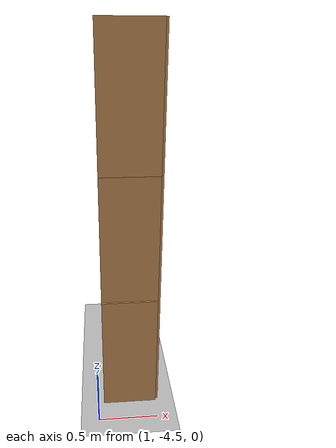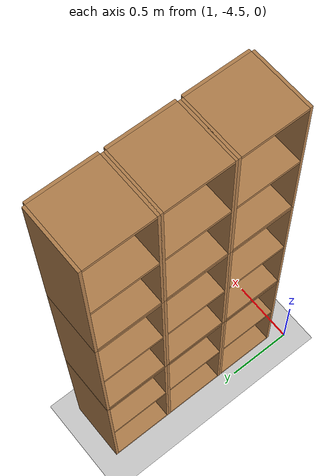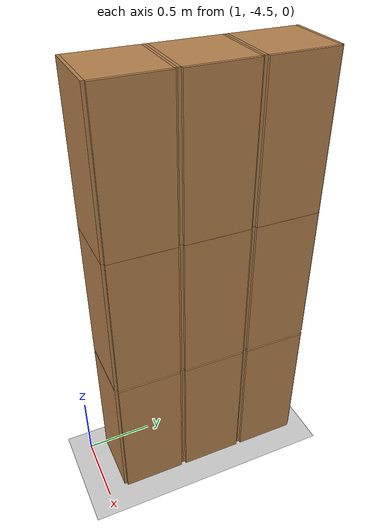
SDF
<sdf version="1.6">
 <world name="default">
  <model name="ground_plane">
   <static>1</static>
   <link name="link">
    <collision name="collision">
     <geometry><plane><normal>0 0 1</normal><size>100 100</size></plane></geometry>
     <surface>
      <contact><collide_bitmask>65535</collide_bitmask></contact>
      <friction><ode><mu>100</mu><mu2>50</mu2></ode></friction>
     </surface>
    </collision>
    <visual name="visual">
     <cast_shadows>0</cast_shadows>
     <geometry><plane><normal>0 0 1</normal><size>100 100</size></plane></geometry>
     <material>
      <script><uri>file://media/materials/scripts/gazebo.material</uri><name>Gazebo/Grey</name></script>
     </material>
    </visual>
   </link>
  </model>
  <model name="Locker18_clone_3_clone_clone">
   <model name="Locker18">
    <model name="Locker3">
     <model name="cabinet">
      <static>1</static>
      <link name="cabinet_bottom_plate">
       <inertial>
        <pose>0 0 -1 0 -0 0</pose>
        <inertia><ixx>2.05</ixx><ixy>0</ixy><ixz>0</ixz><iyy>2.05</iyy><iyz>0</iyz><izz>2.05</izz></inertia>
        <mass>25</mass>
       </inertial>
       <collision name="cabinet_bottom_plate_geom">
        <pose>0 0 0.01 0 -0 0</pose>
        <geometry><box><size>0.45 0.45 0.02</size></box></geometry>
       </collision>
       <visual name="cabinet_bottom_plate_geom_visual">
        <pose>0 0 0.01 0 -0 0</pose>
        <geometry><box><size>0.45 0.45 0.02</size></box></geometry>
        <material>
         <script><uri>file://media/materials/scripts/gazebo.material</uri><name>Gazebo/Wood</name></script>
        </material>
       </visual>
       <collision name="cabinet_bottom_plate_geom_cabinet_back_plate">
        <pose>0.235 0 0.51 0 -0 0</pose>
        <geometry><box><size>0.02 0.45 1.02</size></box></geometry>
       </collision>
       <visual name="cabinet_bottom_plate_geom_cabinet_back_plate_visual">
        <pose>0.235 0 0.51 0 -0 0</pose>
        <geometry><box><size>0.02 0.45 1.02</size></box></geometry>
        <material>
         <script><uri>file://media/materials/scripts/gazebo.material</uri><name>Gazebo/Wood</name></script>
        </material>
       </visual>
       <collision name="cabinet_bottom_plate_geom_cabinet_left_plate">
        <pose>0 0.235 0.51 0 -0 0</pose>
        <geometry><box><size>0.45 0.02 1.02</size></box></geometry>
       </collision>
       <visual name="cabinet_bottom_plate_geom_cabinet_left_plate_visual">
        <pose>0 0.235 0.51 0 -0 0</pose>
        <geometry><box><size>0.45 0.02 1.02</size></box></geometry>
        <material>
         <script><uri>file://media/materials/scripts/gazebo.material</uri><name>Gazebo/Wood</name></script>
        </material>
       </visual>
       <collision name="cabinet_bottom_plate_geom_cabinet_middle_plate">
        <pose>0 0 0.51 0 -0 0</pose>
        <geometry><box><size>0.45 0.45 0.02</size></box></geometry>
       </collision>
       <visual name="cabinet_bottom_plate_geom_cabinet_middle_plate_visual">
        <pose>0 0 0.51 0 -0 0</pose>
        <geometry><box><size>0.45 0.45 0.02</size></box></geometry>
        <material>
         <script><uri>file://media/materials/scripts/gazebo.material</uri><name>Gazebo/Wood</name></script>
        </material>
       </visual>
       <collision name="cabinet_bottom_plate_geom_cabinet_right_plate">
        <pose>0 -0.235 0.51 0 -0 0</pose>
        <geometry><box><size>0.45 0.02 1.02</size></box></geometry>
       </collision>
       <visual name="cabinet_bottom_plate_geom_cabinet_right_plate_visual">
        <pose>0 -0.235 0.51 0 -0 0</pose>
        <geometry><box><size>0.45 0.02 1.02</size></box></geometry>
        <material>
         <script><uri>file://media/materials/scripts/gazebo.material</uri><name>Gazebo/Wood</name></script>
        </material>
       </visual>
       <collision name="cabinet_bottom_plate_geom_cabinet_top_plate">
        <pose>0 0 1.01 0 -0 0</pose>
        <geometry><box><size>0.45 0.45 0.02</size></box></geometry>
       </collision>
       <visual name="cabinet_bottom_plate_geom_cabinet_top_plate_visual">
        <pose>0 0 1.01 0 -0 0</pose>
        <geometry><box><size>0.45 0.45 0.02</size></box></geometry>
        <material>
         <script><uri>file://media/materials/scripts/gazebo.material</uri><name>Gazebo/Wood</name></script>
        </material>
       </visual>
      </link>
      <pose>-0.676968 1.45758 0 0 -0 0</pose>
     </model>
     <model name="cabinet_clone">
      <static>1</static>
      <link name="cabinet_bottom_plate">
       <inertial>
        <pose>0 0 -1 0 -0 0</pose>
        <inertia><ixx>2.05</ixx><ixy>0</ixy><ixz>0</ixz><iyy>2.05</iyy><iyz>0</iyz><izz>2.05</izz></inertia>
        <mass>25</mass>
       </inertial>
       <collision name="cabinet_bottom_plate_geom">
        <pose>0 0 0.01 0 -0 0</pose>
        <geometry><box><size>0.45 0.45 0.02</size></box></geometry>
       </collision>
       <visual name="cabinet_bottom_plate_geom_visual">
        <pose>0 0 0.01 0 -0 0</pose>
        <geometry><box><size>0.45 0.45 0.02</size></box></geometry>
        <material>
         <script><uri>file://media/materials/scripts/gazebo.material</uri><name>Gazebo/Wood</name></script>
        </material>
       </visual>
       <collision name="cabinet_bottom_plate_geom_cabinet_back_plate">
        <pose>0.235 0 0.51 0 -0 0</pose>
        <geometry><box><size>0.02 0.45 1.02</size></box></geometry>
       </collision>
       <visual name="cabinet_bottom_plate_geom_cabinet_back_plate_visual">
        <pose>0.235 0 0.51 0 -0 0</pose>
        <geometry><box><size>0.02 0.45 1.02</size></box></geometry>
        <material>
         <script><uri>file://media/materials/scripts/gazebo.material</uri><name>Gazebo/Wood</name></script>
        </material>
       </visual>
       <collision name="cabinet_bottom_plate_geom_cabinet_left_plate">
        <pose>0 0.235 0.51 0 -0 0</pose>
        <geometry><box><size>0.45 0.02 1.02</size></box></geometry>
       </collision>
       <visual name="cabinet_bottom_plate_geom_cabinet_left_plate_visual">
        <pose>0 0.235 0.51 0 -0 0</pose>
        <geometry><box><size>0.45 0.02 1.02</size></box></geometry>
        <material>
         <script><uri>file://media/materials/scripts/gazebo.material</uri><name>Gazebo/Wood</name></script>
        </material>
       </visual>
       <collision name="cabinet_bottom_plate_geom_cabinet_middle_plate">
        <pose>0 0 0.51 0 -0 0</pose>
        <geometry><box><size>0.45 0.45 0.02</size></box></geometry>
       </collision>
       <visual name="cabinet_bottom_plate_geom_cabinet_middle_plate_visual">
        <pose>0 0 0.51 0 -0 0</pose>
        <geometry><box><size>0.45 0.45 0.02</size></box></geometry>
        <material>
         <script><uri>file://media/materials/scripts/gazebo.material</uri><name>Gazebo/Wood</name></script>
        </material>
       </visual>
       <collision name="cabinet_bottom_plate_geom_cabinet_right_plate">
        <pose>0 -0.235 0.51 0 -0 0</pose>
        <geometry><box><size>0.45 0.02 1.02</size></box></geometry>
       </collision>
       <visual name="cabinet_bottom_plate_geom_cabinet_right_plate_visual">
        <pose>0 -0.235 0.51 0 -0 0</pose>
        <geometry><box><size>0.45 0.02 1.02</size></box></geometry>
        <material>
         <script><uri>file://media/materials/scripts/gazebo.material</uri><name>Gazebo/Wood</name></script>
        </material>
       </visual>
       <collision name="cabinet_bottom_plate_geom_cabinet_top_plate">
        <pose>0 0 1.01 0 -0 0</pose>
        <geometry><box><size>0.45 0.45 0.02</size></box></geometry>
       </collision>
       <visual name="cabinet_bottom_plate_geom_cabinet_top_plate_visual">
        <pose>0 0 1.01 0 -0 0</pose>
        <geometry><box><size>0.45 0.45 0.02</size></box></geometry>
        <material>
         <script><uri>file://media/materials/scripts/gazebo.material</uri><name>Gazebo/Wood</name></script>
        </material>
       </visual>
      </link>
      <pose>-0.676968 0.970971 0 0 -0 0</pose>
     </model>
     <model name="cabinet_clone_0">
      <static>1</static>
      <link name="cabinet_bottom_plate">
       <inertial>
        <pose>0 0 -1 0 -0 0</pose>
        <inertia><ixx>2.05</ixx><ixy>0</ixy><ixz>0</ixz><iyy>2.05</iyy><iyz>0</iyz><izz>2.05</izz></inertia>
        <mass>25</mass>
       </inertial>
       <collision name="cabinet_bottom_plate_geom">
        <pose>0 0 0.01 0 -0 0</pose>
        <geometry><box><size>0.45 0.45 0.02</size></box></geometry>
       </collision>
       <visual name="cabinet_bottom_plate_geom_visual">
        <pose>0 0 0.01 0 -0 0</pose>
        <geometry><box><size>0.45 0.45 0.02</size></box></geometry>
        <material>
         <script><uri>file://media/materials/scripts/gazebo.material</uri><name>Gazebo/Wood</name></script>
        </material>
       </visual>
       <collision name="cabinet_bottom_plate_geom_cabinet_back_plate">
        <pose>0.235 0 0.51 0 -0 0</pose>
        <geometry><box><size>0.02 0.45 1.02</size></box></geometry>
       </collision>
       <visual name="cabinet_bottom_plate_geom_cabinet_back_plate_visual">
        <pose>0.235 0 0.51 0 -0 0</pose>
        <geometry><box><size>0.02 0.45 1.02</size></box></geometry>
        <material>
         <script><uri>file://media/materials/scripts/gazebo.material</uri><name>Gazebo/Wood</name></script>
        </material>
       </visual>
       <collision name="cabinet_bottom_plate_geom_cabinet_left_plate">
        <pose>0 0.235 0.51 0 -0 0</pose>
        <geometry><box><size>0.45 0.02 1.02</size></box></geometry>
       </collision>
       <visual name="cabinet_bottom_plate_geom_cabinet_left_plate_visual">
        <pose>0 0.235 0.51 0 -0 0</pose>
        <geometry><box><size>0.45 0.02 1.02</size></box></geometry>
        <material>
         <script><uri>file://media/materials/scripts/gazebo.material</uri><name>Gazebo/Wood</name></script>
        </material>
       </visual>
       <collision name="cabinet_bottom_plate_geom_cabinet_middle_plate">
        <pose>0 0 0.51 0 -0 0</pose>
        <geometry><box><size>0.45 0.45 0.02</size></box></geometry>
       </collision>
       <visual name="cabinet_bottom_plate_geom_cabinet_middle_plate_visual">
        <pose>0 0 0.51 0 -0 0</pose>
        <geometry><box><size>0.45 0.45 0.02</size></box></geometry>
        <material>
         <script><uri>file://media/materials/scripts/gazebo.material</uri><name>Gazebo/Wood</name></script>
        </material>
       </visual>
       <collision name="cabinet_bottom_plate_geom_cabinet_right_plate">
        <pose>0 -0.235 0.51 0 -0 0</pose>
        <geometry><box><size>0.45 0.02 1.02</size></box></geometry>
       </collision>
       <visual name="cabinet_bottom_plate_geom_cabinet_right_plate_visual">
        <pose>0 -0.235 0.51 0 -0 0</pose>
        <geometry><box><size>0.45 0.02 1.02</size></box></geometry>
        <material>
         <script><uri>file://media/materials/scripts/gazebo.material</uri><name>Gazebo/Wood</name></script>
        </material>
       </visual>
       <collision name="cabinet_bottom_plate_geom_cabinet_top_plate">
        <pose>0 0 1.01 0 -0 0</pose>
        <geometry><box><size>0.45 0.45 0.02</size></box></geometry>
       </collision>
       <visual name="cabinet_bottom_plate_geom_cabinet_top_plate_visual">
        <pose>0 0 1.01 0 -0 0</pose>
        <geometry><box><size>0.45 0.45 0.02</size></box></geometry>
        <material>
         <script><uri>file://media/materials/scripts/gazebo.material</uri><name>Gazebo/Wood</name></script>
        </material>
       </visual>
      </link>
      <pose>-0.676968 0.48391 0 0 -0 0</pose>
     </model>
     <static>0</static>
     <pose>0 3e-06 -1.02763 0 -0 0</pose>
    </model>
    <model name="Locker3_clone">
     <model name="cabinet">
      <static>1</static>
      <link name="cabinet_bottom_plate">
       <inertial>
        <pose>0 0 -1 0 -0 0</pose>
        <inertia><ixx>2.05</ixx><ixy>0</ixy><ixz>0</ixz><iyy>2.05</iyy><iyz>0</iyz><izz>2.05</izz></inertia>
        <mass>25</mass>
       </inertial>
       <collision name="cabinet_bottom_plate_geom">
        <pose>0 0 0.01 0 -0 0</pose>
        <geometry><box><size>0.45 0.45 0.02</size></box></geometry>
       </collision>
       <visual name="cabinet_bottom_plate_geom_visual">
        <pose>0 0 0.01 0 -0 0</pose>
        <geometry><box><size>0.45 0.45 0.02</size></box></geometry>
        <material>
         <script><uri>file://media/materials/scripts/gazebo.material</uri><name>Gazebo/Wood</name></script>
        </material>
       </visual>
       <collision name="cabinet_bottom_plate_geom_cabinet_back_plate">
        <pose>0.235 0 0.51 0 -0 0</pose>
        <geometry><box><size>0.02 0.45 1.02</size></box></geometry>
       </collision>
       <visual name="cabinet_bottom_plate_geom_cabinet_back_plate_visual">
        <pose>0.235 0 0.51 0 -0 0</pose>
        <geometry><box><size>0.02 0.45 1.02</size></box></geometry>
        <material>
         <script><uri>file://media/materials/scripts/gazebo.material</uri><name>Gazebo/Wood</name></script>
        </material>
       </visual>
       <collision name="cabinet_bottom_plate_geom_cabinet_left_plate">
        <pose>0 0.235 0.51 0 -0 0</pose>
        <geometry><box><size>0.45 0.02 1.02</size></box></geometry>
       </collision>
       <visual name="cabinet_bottom_plate_geom_cabinet_left_plate_visual">
        <pose>0 0.235 0.51 0 -0 0</pose>
        <geometry><box><size>0.45 0.02 1.02</size></box></geometry>
        <material>
         <script><uri>file://media/materials/scripts/gazebo.material</uri><name>Gazebo/Wood</name></script>
        </material>
       </visual>
       <collision name="cabinet_bottom_plate_geom_cabinet_middle_plate">
        <pose>0 0 0.51 0 -0 0</pose>
        <geometry><box><size>0.45 0.45 0.02</size></box></geometry>
       </collision>
       <visual name="cabinet_bottom_plate_geom_cabinet_middle_plate_visual">
        <pose>0 0 0.51 0 -0 0</pose>
        <geometry><box><size>0.45 0.45 0.02</size></box></geometry>
        <material>
         <script><uri>file://media/materials/scripts/gazebo.material</uri><name>Gazebo/Wood</name></script>
        </material>
       </visual>
       <collision name="cabinet_bottom_plate_geom_cabinet_right_plate">
        <pose>0 -0.235 0.51 0 -0 0</pose>
        <geometry><box><size>0.45 0.02 1.02</size></box></geometry>
       </collision>
       <visual name="cabinet_bottom_plate_geom_cabinet_right_plate_visual">
        <pose>0 -0.235 0.51 0 -0 0</pose>
        <geometry><box><size>0.45 0.02 1.02</size></box></geometry>
        <material>
         <script><uri>file://media/materials/scripts/gazebo.material</uri><name>Gazebo/Wood</name></script>
        </material>
       </visual>
       <collision name="cabinet_bottom_plate_geom_cabinet_top_plate">
        <pose>0 0 1.01 0 -0 0</pose>
        <geometry><box><size>0.45 0.45 0.02</size></box></geometry>
       </collision>
       <visual name="cabinet_bottom_plate_geom_cabinet_top_plate_visual">
        <pose>0 0 1.01 0 -0 0</pose>
        <geometry><box><size>0.45 0.45 0.02</size></box></geometry>
        <material>
         <script><uri>file://media/materials/scripts/gazebo.material</uri><name>Gazebo/Wood</name></script>
        </material>
       </visual>
      </link>
      <pose>-0.676968 1.45758 0 0 -0 0</pose>
     </model>
     <model name="cabinet_clone">
      <static>1</static>
      <link name="cabinet_bottom_plate">
       <inertial>
        <pose>0 0 -1 0 -0 0</pose>
        <inertia><ixx>2.05</ixx><ixy>0</ixy><ixz>0</ixz><iyy>2.05</iyy><iyz>0</iyz><izz>2.05</izz></inertia>
        <mass>25</mass>
       </inertial>
       <collision name="cabinet_bottom_plate_geom">
        <pose>0 0 0.01 0 -0 0</pose>
        <geometry><box><size>0.45 0.45 0.02</size></box></geometry>
       </collision>
       <visual name="cabinet_bottom_plate_geom_visual">
        <pose>0 0 0.01 0 -0 0</pose>
        <geometry><box><size>0.45 0.45 0.02</size></box></geometry>
        <material>
         <script><uri>file://media/materials/scripts/gazebo.material</uri><name>Gazebo/Wood</name></script>
        </material>
       </visual>
       <collision name="cabinet_bottom_plate_geom_cabinet_back_plate">
        <pose>0.235 0 0.51 0 -0 0</pose>
        <geometry><box><size>0.02 0.45 1.02</size></box></geometry>
       </collision>
       <visual name="cabinet_bottom_plate_geom_cabinet_back_plate_visual">
        <pose>0.235 0 0.51 0 -0 0</pose>
        <geometry><box><size>0.02 0.45 1.02</size></box></geometry>
        <material>
         <script><uri>file://media/materials/scripts/gazebo.material</uri><name>Gazebo/Wood</name></script>
        </material>
       </visual>
       <collision name="cabinet_bottom_plate_geom_cabinet_left_plate">
        <pose>0 0.235 0.51 0 -0 0</pose>
        <geometry><box><size>0.45 0.02 1.02</size></box></geometry>
       </collision>
       <visual name="cabinet_bottom_plate_geom_cabinet_left_plate_visual">
        <pose>0 0.235 0.51 0 -0 0</pose>
        <geometry><box><size>0.45 0.02 1.02</size></box></geometry>
        <material>
         <script><uri>file://media/materials/scripts/gazebo.material</uri><name>Gazebo/Wood</name></script>
        </material>
       </visual>
       <collision name="cabinet_bottom_plate_geom_cabinet_middle_plate">
        <pose>0 0 0.51 0 -0 0</pose>
        <geometry><box><size>0.45 0.45 0.02</size></box></geometry>
       </collision>
       <visual name="cabinet_bottom_plate_geom_cabinet_middle_plate_visual">
        <pose>0 0 0.51 0 -0 0</pose>
        <geometry><box><size>0.45 0.45 0.02</size></box></geometry>
        <material>
         <script><uri>file://media/materials/scripts/gazebo.material</uri><name>Gazebo/Wood</name></script>
        </material>
       </visual>
       <collision name="cabinet_bottom_plate_geom_cabinet_right_plate">
        <pose>0 -0.235 0.51 0 -0 0</pose>
        <geometry><box><size>0.45 0.02 1.02</size></box></geometry>
       </collision>
       <visual name="cabinet_bottom_plate_geom_cabinet_right_plate_visual">
        <pose>0 -0.235 0.51 0 -0 0</pose>
        <geometry><box><size>0.45 0.02 1.02</size></box></geometry>
        <material>
         <script><uri>file://media/materials/scripts/gazebo.material</uri><name>Gazebo/Wood</name></script>
        </material>
       </visual>
       <collision name="cabinet_bottom_plate_geom_cabinet_top_plate">
        <pose>0 0 1.01 0 -0 0</pose>
        <geometry><box><size>0.45 0.45 0.02</size></box></geometry>
       </collision>
       <visual name="cabinet_bottom_plate_geom_cabinet_top_plate_visual">
        <pose>0 0 1.01 0 -0 0</pose>
        <geometry><box><size>0.45 0.45 0.02</size></box></geometry>
        <material>
         <script><uri>file://media/materials/scripts/gazebo.material</uri><name>Gazebo/Wood</name></script>
        </material>
       </visual>
      </link>
      <pose>-0.676968 0.970971 0 0 -0 0</pose>
     </model>
     <model name="cabinet_clone_0">
      <static>1</static>
      <link name="cabinet_bottom_plate">
       <inertial>
        <pose>0 0 -1 0 -0 0</pose>
        <inertia><ixx>2.05</ixx><ixy>0</ixy><ixz>0</ixz><iyy>2.05</iyy><iyz>0</iyz><izz>2.05</izz></inertia>
        <mass>25</mass>
       </inertial>
       <collision name="cabinet_bottom_plate_geom">
        <pose>0 0 0.01 0 -0 0</pose>
        <geometry><box><size>0.45 0.45 0.02</size></box></geometry>
       </collision>
       <visual name="cabinet_bottom_plate_geom_visual">
        <pose>0 0 0.01 0 -0 0</pose>
        <geometry><box><size>0.45 0.45 0.02</size></box></geometry>
        <material>
         <script><uri>file://media/materials/scripts/gazebo.material</uri><name>Gazebo/Wood</name></script>
        </material>
       </visual>
       <collision name="cabinet_bottom_plate_geom_cabinet_back_plate">
        <pose>0.235 0 0.51 0 -0 0</pose>
        <geometry><box><size>0.02 0.45 1.02</size></box></geometry>
       </collision>
       <visual name="cabinet_bottom_plate_geom_cabinet_back_plate_visual">
        <pose>0.235 0 0.51 0 -0 0</pose>
        <geometry><box><size>0.02 0.45 1.02</size></box></geometry>
        <material>
         <script><uri>file://media/materials/scripts/gazebo.material</uri><name>Gazebo/Wood</name></script>
        </material>
       </visual>
       <collision name="cabinet_bottom_plate_geom_cabinet_left_plate">
        <pose>0 0.235 0.51 0 -0 0</pose>
        <geometry><box><size>0.45 0.02 1.02</size></box></geometry>
       </collision>
       <visual name="cabinet_bottom_plate_geom_cabinet_left_plate_visual">
        <pose>0 0.235 0.51 0 -0 0</pose>
        <geometry><box><size>0.45 0.02 1.02</size></box></geometry>
        <material>
         <script><uri>file://media/materials/scripts/gazebo.material</uri><name>Gazebo/Wood</name></script>
        </material>
       </visual>
       <collision name="cabinet_bottom_plate_geom_cabinet_middle_plate">
        <pose>0 0 0.51 0 -0 0</pose>
        <geometry><box><size>0.45 0.45 0.02</size></box></geometry>
       </collision>
       <visual name="cabinet_bottom_plate_geom_cabinet_middle_plate_visual">
        <pose>0 0 0.51 0 -0 0</pose>
        <geometry><box><size>0.45 0.45 0.02</size></box></geometry>
        <material>
         <script><uri>file://media/materials/scripts/gazebo.material</uri><name>Gazebo/Wood</name></script>
        </material>
       </visual>
       <collision name="cabinet_bottom_plate_geom_cabinet_right_plate">
        <pose>0 -0.235 0.51 0 -0 0</pose>
        <geometry><box><size>0.45 0.02 1.02</size></box></geometry>
       </collision>
       <visual name="cabinet_bottom_plate_geom_cabinet_right_plate_visual">
        <pose>0 -0.235 0.51 0 -0 0</pose>
        <geometry><box><size>0.45 0.02 1.02</size></box></geometry>
        <material>
         <script><uri>file://media/materials/scripts/gazebo.material</uri><name>Gazebo/Wood</name></script>
        </material>
       </visual>
       <collision name="cabinet_bottom_plate_geom_cabinet_top_plate">
        <pose>0 0 1.01 0 -0 0</pose>
        <geometry><box><size>0.45 0.45 0.02</size></box></geometry>
       </collision>
       <visual name="cabinet_bottom_plate_geom_cabinet_top_plate_visual">
        <pose>0 0 1.01 0 -0 0</pose>
        <geometry><box><size>0.45 0.45 0.02</size></box></geometry>
        <material>
         <script><uri>file://media/materials/scripts/gazebo.material</uri><name>Gazebo/Wood</name></script>
        </material>
       </visual>
      </link>
      <pose>-0.676968 0.48391 0 0 -0 0</pose>
     </model>
     <static>0</static>
     <pose>0 3e-06 0.003717 0 -0 0</pose>
    </model>
    <model name="Locker3_clone_clone">
     <model name="cabinet">
      <static>1</static>
      <link name="cabinet_bottom_plate">
       <inertial>
        <pose>0 0 -1 0 -0 0</pose>
        <inertia><ixx>2.05</ixx><ixy>0</ixy><ixz>0</ixz><iyy>2.05</iyy><iyz>0</iyz><izz>2.05</izz></inertia>
        <mass>25</mass>
       </inertial>
       <collision name="cabinet_bottom_plate_geom">
        <pose>0 0 0.01 0 -0 0</pose>
        <geometry><box><size>0.45 0.45 0.02</size></box></geometry>
       </collision>
       <visual name="cabinet_bottom_plate_geom_visual">
        <pose>0 0 0.01 0 -0 0</pose>
        <geometry><box><size>0.45 0.45 0.02</size></box></geometry>
        <material>
         <script><uri>file://media/materials/scripts/gazebo.material</uri><name>Gazebo/Wood</name></script>
        </material>
       </visual>
       <collision name="cabinet_bottom_plate_geom_cabinet_back_plate">
        <pose>0.235 0 0.51 0 -0 0</pose>
        <geometry><box><size>0.02 0.45 1.02</size></box></geometry>
       </collision>
       <visual name="cabinet_bottom_plate_geom_cabinet_back_plate_visual">
        <pose>0.235 0 0.51 0 -0 0</pose>
        <geometry><box><size>0.02 0.45 1.02</size></box></geometry>
        <material>
         <script><uri>file://media/materials/scripts/gazebo.material</uri><name>Gazebo/Wood</name></script>
        </material>
       </visual>
       <collision name="cabinet_bottom_plate_geom_cabinet_left_plate">
        <pose>0 0.235 0.51 0 -0 0</pose>
        <geometry><box><size>0.45 0.02 1.02</size></box></geometry>
       </collision>
       <visual name="cabinet_bottom_plate_geom_cabinet_left_plate_visual">
        <pose>0 0.235 0.51 0 -0 0</pose>
        <geometry><box><size>0.45 0.02 1.02</size></box></geometry>
        <material>
         <script><uri>file://media/materials/scripts/gazebo.material</uri><name>Gazebo/Wood</name></script>
        </material>
       </visual>
       <collision name="cabinet_bottom_plate_geom_cabinet_middle_plate">
        <pose>0 0 0.51 0 -0 0</pose>
        <geometry><box><size>0.45 0.45 0.02</size></box></geometry>
       </collision>
       <visual name="cabinet_bottom_plate_geom_cabinet_middle_plate_visual">
        <pose>0 0 0.51 0 -0 0</pose>
        <geometry><box><size>0.45 0.45 0.02</size></box></geometry>
        <material>
         <script><uri>file://media/materials/scripts/gazebo.material</uri><name>Gazebo/Wood</name></script>
        </material>
       </visual>
       <collision name="cabinet_bottom_plate_geom_cabinet_right_plate">
        <pose>0 -0.235 0.51 0 -0 0</pose>
        <geometry><box><size>0.45 0.02 1.02</size></box></geometry>
       </collision>
       <visual name="cabinet_bottom_plate_geom_cabinet_right_plate_visual">
        <pose>0 -0.235 0.51 0 -0 0</pose>
        <geometry><box><size>0.45 0.02 1.02</size></box></geometry>
        <material>
         <script><uri>file://media/materials/scripts/gazebo.material</uri><name>Gazebo/Wood</name></script>
        </material>
       </visual>
       <collision name="cabinet_bottom_plate_geom_cabinet_top_plate">
        <pose>0 0 1.01 0 -0 0</pose>
        <geometry><box><size>0.45 0.45 0.02</size></box></geometry>
       </collision>
       <visual name="cabinet_bottom_plate_geom_cabinet_top_plate_visual">
        <pose>0 0 1.01 0 -0 0</pose>
        <geometry><box><size>0.45 0.45 0.02</size></box></geometry>
        <material>
         <script><uri>file://media/materials/scripts/gazebo.material</uri><name>Gazebo/Wood</name></script>
        </material>
       </visual>
      </link>
      <pose>-0.676968 1.45758 0 0 -0 0</pose>
     </model>
     <model name="cabinet_clone">
      <static>1</static>
      <link name="cabinet_bottom_plate">
       <inertial>
        <pose>0 0 -1 0 -0 0</pose>
        <inertia><ixx>2.05</ixx><ixy>0</ixy><ixz>0</ixz><iyy>2.05</iyy><iyz>0</iyz><izz>2.05</izz></inertia>
        <mass>25</mass>
       </inertial>
       <collision name="cabinet_bottom_plate_geom">
        <pose>0 0 0.01 0 -0 0</pose>
        <geometry><box><size>0.45 0.45 0.02</size></box></geometry>
       </collision>
       <visual name="cabinet_bottom_plate_geom_visual">
        <pose>0 0 0.01 0 -0 0</pose>
        <geometry><box><size>0.45 0.45 0.02</size></box></geometry>
        <material>
         <script><uri>file://media/materials/scripts/gazebo.material</uri><name>Gazebo/Wood</name></script>
        </material>
       </visual>
       <collision name="cabinet_bottom_plate_geom_cabinet_back_plate">
        <pose>0.235 0 0.51 0 -0 0</pose>
        <geometry><box><size>0.02 0.45 1.02</size></box></geometry>
       </collision>
       <visual name="cabinet_bottom_plate_geom_cabinet_back_plate_visual">
        <pose>0.235 0 0.51 0 -0 0</pose>
        <geometry><box><size>0.02 0.45 1.02</size></box></geometry>
        <material>
         <script><uri>file://media/materials/scripts/gazebo.material</uri><name>Gazebo/Wood</name></script>
        </material>
       </visual>
       <collision name="cabinet_bottom_plate_geom_cabinet_left_plate">
        <pose>0 0.235 0.51 0 -0 0</pose>
        <geometry><box><size>0.45 0.02 1.02</size></box></geometry>
       </collision>
       <visual name="cabinet_bottom_plate_geom_cabinet_left_plate_visual">
        <pose>0 0.235 0.51 0 -0 0</pose>
        <geometry><box><size>0.45 0.02 1.02</size></box></geometry>
        <material>
         <script><uri>file://media/materials/scripts/gazebo.material</uri><name>Gazebo/Wood</name></script>
        </material>
       </visual>
       <collision name="cabinet_bottom_plate_geom_cabinet_middle_plate">
        <pose>0 0 0.51 0 -0 0</pose>
        <geometry><box><size>0.45 0.45 0.02</size></box></geometry>
       </collision>
       <visual name="cabinet_bottom_plate_geom_cabinet_middle_plate_visual">
        <pose>0 0 0.51 0 -0 0</pose>
        <geometry><box><size>0.45 0.45 0.02</size></box></geometry>
        <material>
         <script><uri>file://media/materials/scripts/gazebo.material</uri><name>Gazebo/Wood</name></script>
        </material>
       </visual>
       <collision name="cabinet_bottom_plate_geom_cabinet_right_plate">
        <pose>0 -0.235 0.51 0 -0 0</pose>
        <geometry><box><size>0.45 0.02 1.02</size></box></geometry>
       </collision>
       <visual name="cabinet_bottom_plate_geom_cabinet_right_plate_visual">
        <pose>0 -0.235 0.51 0 -0 0</pose>
        <geometry><box><size>0.45 0.02 1.02</size></box></geometry>
        <material>
         <script><uri>file://media/materials/scripts/gazebo.material</uri><name>Gazebo/Wood</name></script>
        </material>
       </visual>
       <collision name="cabinet_bottom_plate_geom_cabinet_top_plate">
        <pose>0 0 1.01 0 -0 0</pose>
        <geometry><box><size>0.45 0.45 0.02</size></box></geometry>
       </collision>
       <visual name="cabinet_bottom_plate_geom_cabinet_top_plate_visual">
        <pose>0 0 1.01 0 -0 0</pose>
        <geometry><box><size>0.45 0.45 0.02</size></box></geometry>
        <material>
         <script><uri>file://media/materials/scripts/gazebo.material</uri><name>Gazebo/Wood</name></script>
        </material>
       </visual>
      </link>
      <pose>-0.676968 0.970971 0 0 -0 0</pose>
     </model>
     <model name="cabinet_clone_0">
      <static>1</static>
      <link name="cabinet_bottom_plate">
       <inertial>
        <pose>0 0 -1 0 -0 0</pose>
        <inertia><ixx>2.05</ixx><ixy>0</ixy><ixz>0</ixz><iyy>2.05</iyy><iyz>0</iyz><izz>2.05</izz></inertia>
        <mass>25</mass>
       </inertial>
       <collision name="cabinet_bottom_plate_geom">
        <pose>0 0 0.01 0 -0 0</pose>
        <geometry><box><size>0.45 0.45 0.02</size></box></geometry>
       </collision>
       <visual name="cabinet_bottom_plate_geom_visual">
        <pose>0 0 0.01 0 -0 0</pose>
        <geometry><box><size>0.45 0.45 0.02</size></box></geometry>
        <material>
         <script><uri>file://media/materials/scripts/gazebo.material</uri><name>Gazebo/Wood</name></script>
        </material>
       </visual>
       <collision name="cabinet_bottom_plate_geom_cabinet_back_plate">
        <pose>0.235 0 0.51 0 -0 0</pose>
        <geometry><box><size>0.02 0.45 1.02</size></box></geometry>
       </collision>
       <visual name="cabinet_bottom_plate_geom_cabinet_back_plate_visual">
        <pose>0.235 0 0.51 0 -0 0</pose>
        <geometry><box><size>0.02 0.45 1.02</size></box></geometry>
        <material>
         <script><uri>file://media/materials/scripts/gazebo.material</uri><name>Gazebo/Wood</name></script>
        </material>
       </visual>
       <collision name="cabinet_bottom_plate_geom_cabinet_left_plate">
        <pose>0 0.235 0.51 0 -0 0</pose>
        <geometry><box><size>0.45 0.02 1.02</size></box></geometry>
       </collision>
       <visual name="cabinet_bottom_plate_geom_cabinet_left_plate_visual">
        <pose>0 0.235 0.51 0 -0 0</pose>
        <geometry><box><size>0.45 0.02 1.02</size></box></geometry>
        <material>
         <script><uri>file://media/materials/scripts/gazebo.material</uri><name>Gazebo/Wood</name></script>
        </material>
       </visual>
       <collision name="cabinet_bottom_plate_geom_cabinet_middle_plate">
        <pose>0 0 0.51 0 -0 0</pose>
        <geometry><box><size>0.45 0.45 0.02</size></box></geometry>
       </collision>
       <visual name="cabinet_bottom_plate_geom_cabinet_middle_plate_visual">
        <pose>0 0 0.51 0 -0 0</pose>
        <geometry><box><size>0.45 0.45 0.02</size></box></geometry>
        <material>
         <script><uri>file://media/materials/scripts/gazebo.material</uri><name>Gazebo/Wood</name></script>
        </material>
       </visual>
       <collision name="cabinet_bottom_plate_geom_cabinet_right_plate">
        <pose>0 -0.235 0.51 0 -0 0</pose>
        <geometry><box><size>0.45 0.02 1.02</size></box></geometry>
       </collision>
       <visual name="cabinet_bottom_plate_geom_cabinet_right_plate_visual">
        <pose>0 -0.235 0.51 0 -0 0</pose>
        <geometry><box><size>0.45 0.02 1.02</size></box></geometry>
        <material>
         <script><uri>file://media/materials/scripts/gazebo.material</uri><name>Gazebo/Wood</name></script>
        </material>
       </visual>
       <collision name="cabinet_bottom_plate_geom_cabinet_top_plate">
        <pose>0 0 1.01 0 -0 0</pose>
        <geometry><box><size>0.45 0.45 0.02</size></box></geometry>
       </collision>
       <visual name="cabinet_bottom_plate_geom_cabinet_top_plate_visual">
        <pose>0 0 1.01 0 -0 0</pose>
        <geometry><box><size>0.45 0.45 0.02</size></box></geometry>
        <material>
         <script><uri>file://media/materials/scripts/gazebo.material</uri><name>Gazebo/Wood</name></script>
        </material>
       </visual>
      </link>
      <pose>-0.676968 0.48391 0 0 -0 0</pose>
     </model>
     <static>0</static>
     <pose>0 3e-06 1.02391 0 -0 0</pose>
    </model>
    <static>0</static>
    <pose>-0 4e-06 4e-06 0 -0 0</pose>
   </model>
   <static>0</static>
   <pose>1.94984 -4.61543 1.08672 0 -0 0</pose>
  </model>
 </world>
</sdf>
